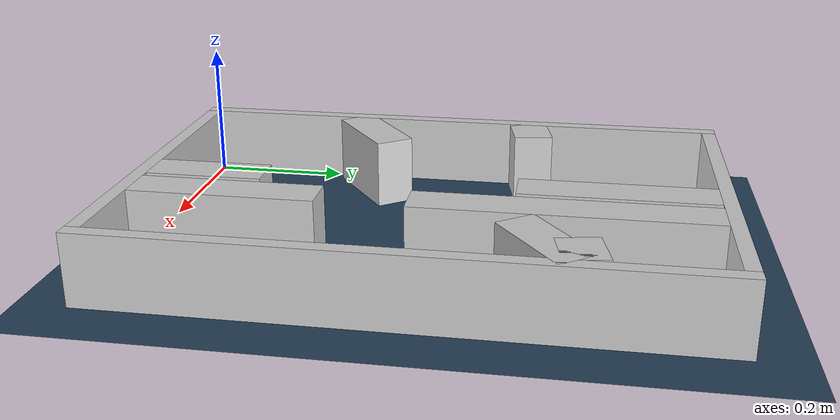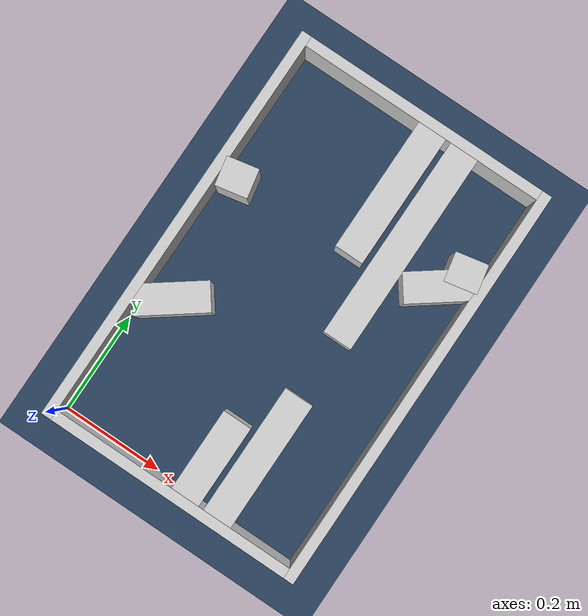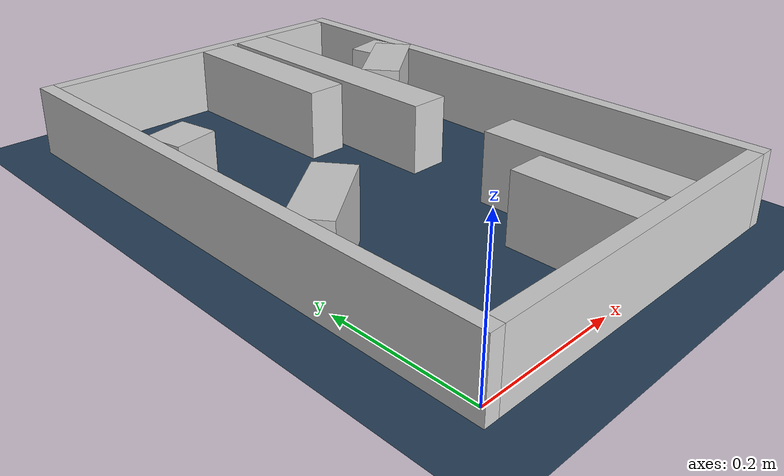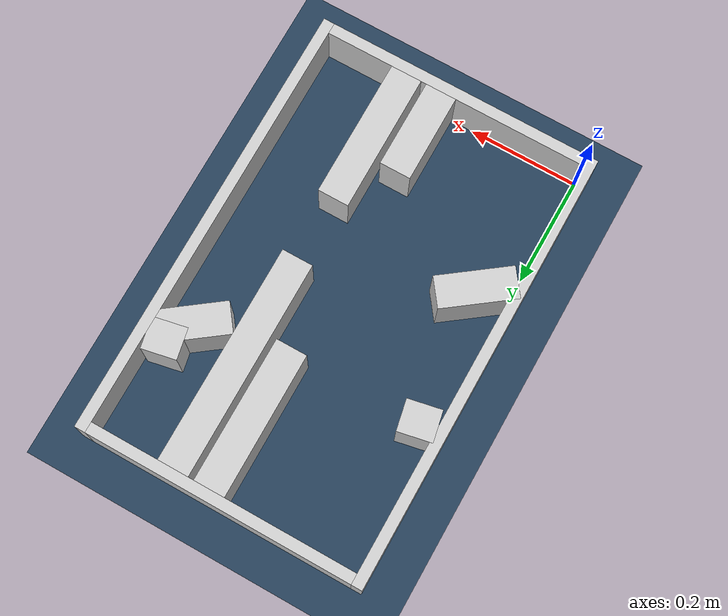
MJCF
<?xml version="1.0" ?>
<mujoco model="generated_real_template">
  <compiler angle="degree"/>
  <option timestep="0.002" integrator="implicitfast" iterations="100" cone="elliptic"/>
  <default>
    <geom density="1"/>
  </default>
  <asset>
    <texture builtin="gradient" height="3072" rgb1="0.3 0.5 0.7" rgb2="0 0 0" type="skybox" width="512"/>
    <texture builtin="checker" height="300" mark="edge" markrgb="0.8 0.8 0.8" name="groundplane" rgb1="0.2 0.3 0.4" rgb2="0.1 0.2 0.3" type="2d" width="300"/>
    <material name="groundplane" reflectance="0.2" texrepeat="5 5" texture="groundplane" texuniform="true"/>
  </asset>
  <worldbody>
    <light dir="0 0 -1" directional="true" pos="0 0 1.5"/>
    <geom name="floor" type="plane" condim="4" friction="0.5 0.005 0.001" material="groundplane" size="0 0 0.05"/>
    <body name="walls">
      <geom name="wall_boundary_left" type="box" condim="4" friction="1.0 0.005 0.0001" rgba="0.8 0.8 0.8 1" pos="-0.010000 0.387500 0.050000" euler="0 0 0.000000" size="0.010000 0.407500 0.050000"/>
      <geom name="wall_boundary_right" type="box" condim="4" friction="1.0 0.005 0.0001" rgba="0.8 0.8 0.8 1" pos="0.500000 0.387500 0.050000" euler="0 0 0.000000" size="0.010000 0.407500 0.050000"/>
      <geom name="wall_boundary_bottom" type="box" condim="4" friction="1.0 0.005 0.0001" rgba="0.8 0.8 0.8 1" pos="0.245000 -0.010000 0.050000" euler="0 0 0.000000" size="0.245000 0.010000 0.050000"/>
      <geom name="wall_boundary_top" type="box" condim="4" friction="1.0 0.005 0.0001" rgba="0.8 0.8 0.8 1" pos="0.245000 0.785000 0.050000" euler="0 0 0.000000" size="0.245000 0.010000 0.050000"/>
      <geom name="wall_inner_1_1" type="box" condim="4" friction="1.0 0.005 0.0001" rgba="0.8 0.8 0.8 1" pos="0.055402 0.273388 0.050000" euler="0 0 36.580116" size="0.068992 0.028500 0.050000"/>
      <geom name="wall_inner_1_2" type="box" condim="4" friction="1.0 0.005 0.0001" rgba="0.8 0.8 0.8 1" pos="0.435549 0.555506 0.050000" euler="0 0 36.580116" size="0.067807 0.028500 0.050000"/>
      <geom name="wall_inner_2_1" type="box" condim="4" friction="1.0 0.005 0.0001" rgba="0.8 0.8 0.8 1" pos="0.030654 0.514129 0.050000" euler="0 0 11.234427" size="0.031253 0.028500 0.050000"/>
      <geom name="wall_inner_2_2" type="box" condim="4" friction="1.0 0.005 0.0001" rgba="0.8 0.8 0.8 1" pos="0.458970 0.599205 0.050000" euler="0 0 11.234427" size="0.031637 0.028500 0.050000"/>
      <geom name="wall_inner_3_1" type="box" condim="4" friction="1.0 0.005 0.0001" rgba="0.8 0.8 0.8 1" pos="0.337271 0.127644 0.050000" euler="0 0 90.000000" size="0.127644 0.028500 0.050000"/>
      <geom name="wall_inner_3_2" type="box" condim="4" friction="1.0 0.005 0.0001" rgba="0.8 0.8 0.8 1" pos="0.337271 0.574434 0.050000" euler="0 0 90.000000" size="0.200566 0.028500 0.050000"/>
      <geom name="wall_inner_4_1" type="box" condim="4" friction="1.0 0.005 0.0001" rgba="0.8 0.8 0.8 1" pos="0.270174 0.081256 0.050000" euler="0 0 90.000000" size="0.081256 0.028500 0.050000"/>
      <geom name="wall_inner_4_2" type="box" condim="4" friction="1.0 0.005 0.0001" rgba="0.8 0.8 0.8 1" pos="0.270174 0.642653 0.050000" euler="0 0 90.000000" size="0.132347 0.028500 0.050000"/>
    </body>
  </worldbody>
</mujoco>
